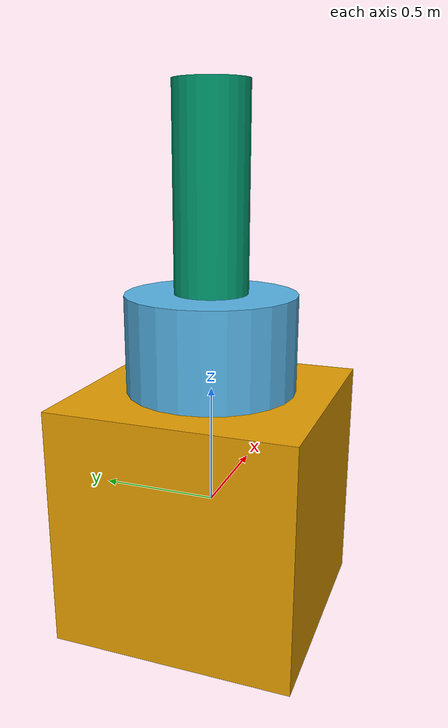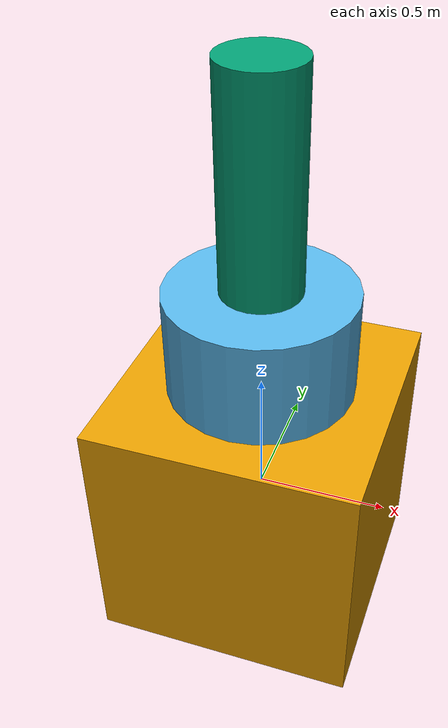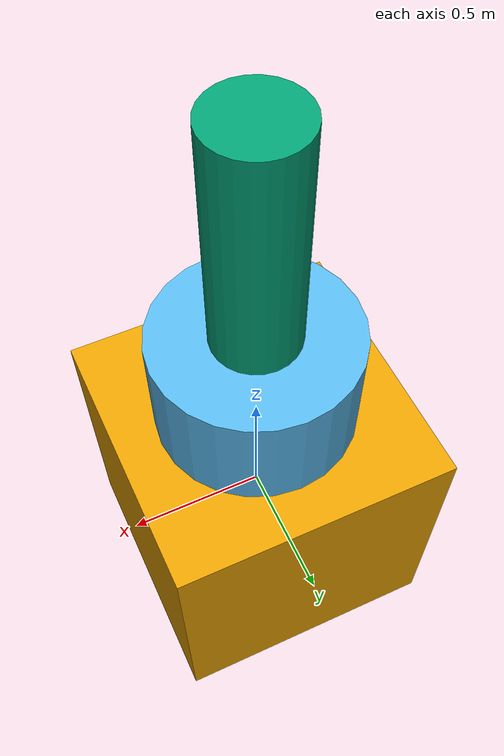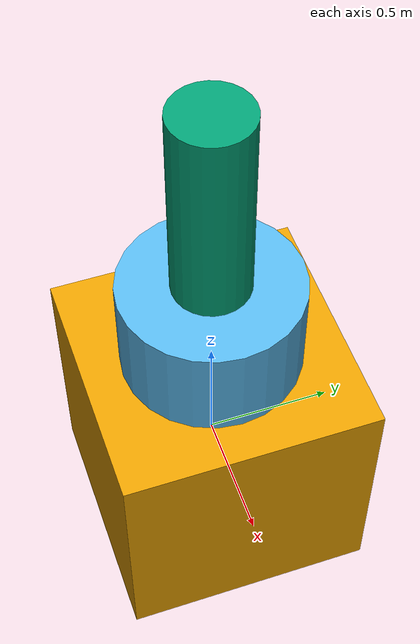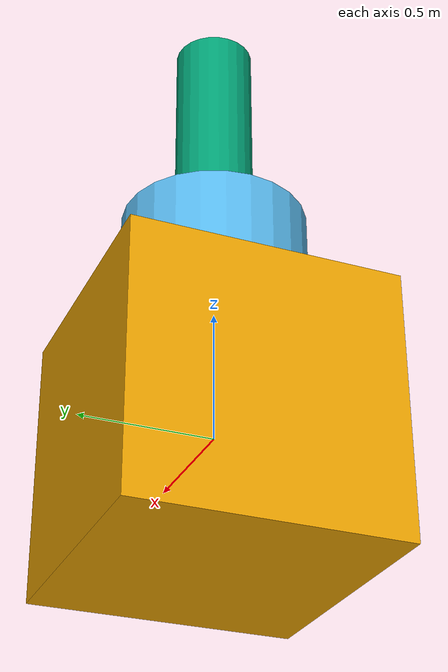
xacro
<?xml version="1.0" ?>

<robot name="rm" xmlns:xacro="http://www.ros.org/wiki/xacro">

  <!-- BGN - Include -->
  <!-- Include the file to use the functions -->
  <xacro:include filename="$(find rm_description)/urdf/robot_parameters.xacro" />
  <xacro:include filename="$(find rm_description)/urdf/links_joints.xacro" />
  <!-- END - Include -->

  <!-- BGN - Robot description -->
  <!-- Base link box robot description-->
  <m_link_box name="${l00}"
              origin_rpy="0 0 0" origin_xyz="0 0 0"
              mass="1024"
              ixx="170.667" ixy="0" ixz="0"
              iyy="170.667" iyz="0"
              izz="170.667"
              box_size="1 1 1" />
<!--            &lt;!&ndash; Origin of the box &ndash;&gt;-->
<!--                &lt;!&ndash; Box size in meters &ndash;&gt;-->

  <!-- The circle joint between base_link and link_01 rotating around the z-axis -->
  <m_joint name="${l00}__${l01}" type="revolute"
           axis_xyz="0 0 1"
           origin_rpy="0 0 0" origin_xyz="0 0 0.5"
           parent="${l00}" child="${l01}" />
  <!-- To use the controllers, add a new element for each joint we want to control which is called transmission -->
  <transmission name="trans_${l00}__${l01}">
    <type>transmission_interface/SimpleTransmission</type>
    <joint name="${l00}__${l01}">
      <hardwareInterface>hardware_interface/EffortJointInterface</hardwareInterface>
    </joint>
    <actuator name="motor_${l00}__${l01}">
      <hardwareInterface>hardware_interface/EffortJointInterface</hardwareInterface>
      <mechanicalReduction>1</mechanicalReduction>
    </actuator>
  </transmission>

  <!-- Link 1-->
  <m_link_cylinder name="${l01}"
              origin_rpy="0 0 0" origin_xyz="0 0 0.2"
              mass="157.633"
              ixx="13.235" ixy="0" ixz="0"
              iyy="13.235" iyz="0"
              izz="9.655"
              length="0.4" radius="0.35" />

  <m_joint name="${l01}__${l02}" type="revolute"
           axis_xyz="0 1 0"
           origin_rpy="0 0 0" origin_xyz="0 0 0.4"
           parent="${l01}" child="${l02}" />

  <transmission name="trans_${l01}__${l02}">
    <type>transmission_interface/SimpleTransmission</type>
    <joint name="${l01}__${l02}">
      <hardwareInterface>hardware_interface/EffortJointInterface</hardwareInterface>
    </joint>
    <actuator name="motor_${l01}__${l02}">
      <hardwareInterface>hardware_interface/EffortJointInterface</hardwareInterface>
      <mechanicalReduction>1</mechanicalReduction>
    </actuator>
  </transmission>

  <m_link_cylinder name="${l02}"
              origin_rpy="0 0 0" origin_xyz="0 0 0.4"
              mass="57.906"
              ixx="12.679" ixy="0" ixz="0"
              iyy="12.679" iyz="0"
              izz="0.651"
              radius="0.15" length="0.8" />

  <!-- END - Robot description -->

  <gazebo>
    <plugin name="gazebo_ros_control" filename="libgazebo_ros_control.so">
    </plugin>
  </gazebo>

</robot>

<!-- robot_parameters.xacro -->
<robot xmlns:xacro="http://www.ros.org/wiki/xacro">
    <xacro:property name="l00" value="base_link"/>
    <xacro:property name="l01" value="link_01"/>
    <xacro:property name="l02" value="link_02"/>
    <xacro:property name="l03" value="link_03"/>
    <xacro:property name="l04" value="link_04"/>
    <xacro:property name="l05" value="link_05"/>
</robot>

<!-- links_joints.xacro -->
<robot xmlns:xacro="http://www.ros.org/wiki/xacro">

    <!-- We need Inertia and Collision properties for Gazebo simulation -->

    <!-- Creating m_joint function for joints-->
    <xacro:macro name="m_joint" params="name type axis_xyz origin_rpy origin_xyz parent child">
        <joint name="${name}" type="${type}">
            <axis xyz="${axis_xyz}"/>
            <limit effort="1000.0" lower="-3.14" upper="3.14" velocity="0.5"/>
            <origin rpy="${origin_rpy}" xyz="${origin_xyz}"/>
            <parent link="${parent}"/>
            <child link="${child}"/>
        </joint>
    </xacro:macro>

    <!-- Creating m_link_cylinder function for links-->
    <xacro:macro name="m_link_cylinder" params="name origin_rpy origin_xyz radius length mass ixx ixy ixz iyy iyz izz">
        <link name="${name}">
            <!-- START Gazebo simulation properties -->
            <inertial>
                <mass value="${mass}"/>
                <origin rpy="${origin_rpy}" xyz="${origin_xyz}"/>
                <inertia ixx="${ixx}" ixy="${ixy}" ixz="${ixz}" iyy="${iyy}" iyz="${iyz}" izz="${izz}"/>
            </inertial>
            <collision>
                <origin rpy="${origin_rpy}" xyz="${origin_xyz}"/>
                <geometry>
                    <cylinder radius="${radius}" length="${length}"/>
                </geometry>
            </collision>
            <!-- END START Gazebo simulation properties -->
            <visual>
                <origin rpy="${origin_rpy}" xyz="${origin_xyz}"/>
                <geometry>
                    <cylinder radius="${radius}" length="${length}"/>
                </geometry>
            </visual>
        </link>
    </xacro:macro>

    <!-- Creating m_link_box function for link box-->
    <xacro:macro name="m_link_box" params="name origin_rpy origin_xyz box_size mass ixx ixy ixz iyy iyz izz">
        <link name="${name}">
            <!-- START Gazebo simulation properties -->
            <inertial>
                <mass value="${mass}"/>
                <origin rpy="${origin_rpy}" xyz="${origin_xyz}"/>
                <inertia ixx="${ixx}" ixy="${ixy}" ixz="${ixz}" iyy="${iyy}" iyz="${iyz}" izz="${izz}"/>
            </inertial>
            <collision>
                <origin rpy="${origin_rpy}" xyz="${origin_xyz}"/>
                <geometry>
                    <box size="${box_size}"/>
                </geometry>
            </collision>
            <!-- END START Gazebo simulation properties -->
            <visual>
                <origin rpy="${origin_rpy}" xyz="${origin_xyz}"/>
                <geometry>
                    <box size="${box_size}"/>
                </geometry>
            </visual>
        </link>
    </xacro:macro>
</robot>
